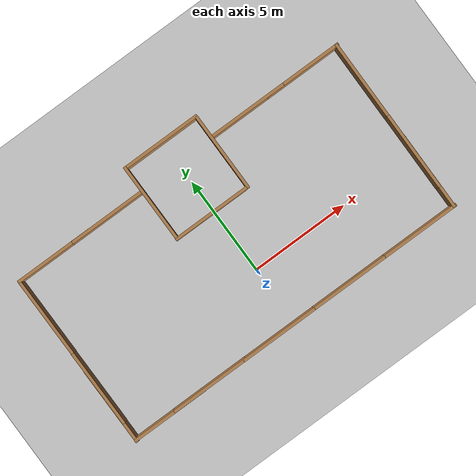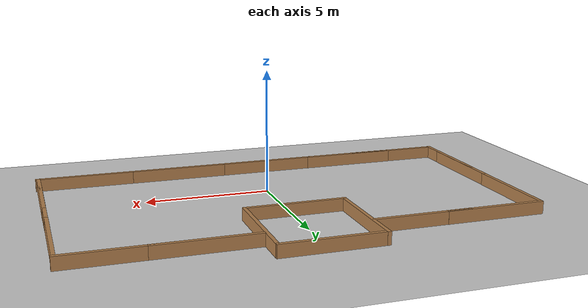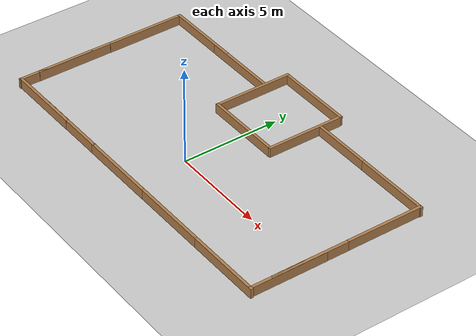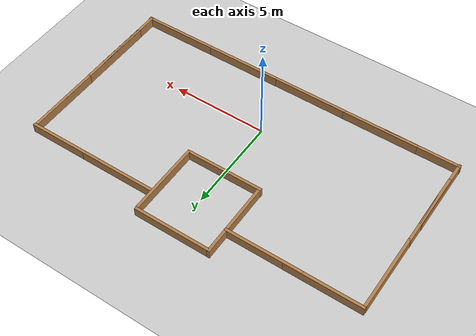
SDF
<sdf version="1.6">
 <world name="default">
  <light name="sun" type="directional">
   <pose>0 0 10 0 -0 0</pose>
   <diffuse>0.8 0.8 0.8 1</diffuse>
   <specular>0.2 0.2 0.2 1</specular>
   <attenuation>
    <range>1000</range>
    <constant>0.9</constant>
    <linear>0.01</linear>
    <quadratic>0.001</quadratic>
   </attenuation>
   <direction>-0.5 0.1 -0.9</direction>
  </light>
  <physics name="default_physics" default="0" type="ode">
   <real_time_update_rate>1000</real_time_update_rate>
   <max_step_size>0.001</max_step_size>
   <real_time_factor>1</real_time_factor>
   <ode>
    <solver>
     <type>quick</type>
     <iters>150</iters>
     <precon_iters>0</precon_iters>
     <sor>1.4</sor>
     <use_dynamic_moi_rescaling>1</use_dynamic_moi_rescaling>
    </solver>
    <constraints>
     <cfm>1e-05</cfm>
     <erp>0.2</erp>
     <contact_max_correcting_vel>2000</contact_max_correcting_vel>
     <contact_surface_layer>0.01</contact_surface_layer>
    </constraints>
   </ode>
  </physics>
  <scene><ambient>0.4 0.4 0.4 1</ambient><background>0.7 0.7 0.7 1</background><shadows>1</shadows></scene>
  <gravity>0 0 -9.8</gravity>
  <magnetic_field>6e-06 2.3e-05 -4.2e-05</magnetic_field>
  <atmosphere type="adiabatic"/>
  <audio><device>default</device></audio>
  <spherical_coordinates>
   <surface_model>EARTH_WGS84</surface_model>
   <latitude_deg>0</latitude_deg>
   <longitude_deg>0</longitude_deg>
   <elevation>0</elevation>
   <heading_deg>0</heading_deg>
  </spherical_coordinates>
  <model name="turtlebot3_square">
   <pose>-0.133172 5.32272 0 0 -0 1.57223</pose>
   <link name="Wall_0">
    <collision name="Wall_0_Collision">
     <geometry><box><size>4 0.15 0.5</size></box></geometry>
     <pose>0 0 0.25 0 -0 0</pose>
    </collision>
    <visual name="Wall_0_Visual">
     <pose>0 0 0.25 0 -0 0</pose>
     <geometry><box><size>4 0.15 0.5</size></box></geometry>
     <material>
      <script><uri>file://media/materials/scripts/gazebo.material</uri><name>Gazebo/Wood</name></script>
      <ambient>1 1 1 1</ambient>
     </material>
    </visual>
    <pose>0 1.925 0 0 -0 0</pose>
   </link>
   <static>1</static>
  </model>
  <model name="turtlebot3_square_clone">
   <pose>-7.03636 3.89737 0 0 -0 1.57456</pose>
   <link name="Wall_0">
    <collision name="Wall_0_Collision">
     <geometry><box><size>4 0.15 0.5</size></box></geometry>
     <pose>0 0 0.25 0 -0 0</pose>
    </collision>
    <visual name="Wall_0_Visual">
     <pose>0 0 0.25 0 -0 0</pose>
     <geometry><box><size>4 0.15 0.5</size></box></geometry>
     <material>
      <script><uri>file://media/materials/scripts/gazebo.material</uri><name>Gazebo/Wood</name></script>
      <ambient>1 1 1 1</ambient>
     </material>
    </visual>
    <pose>0 1.925 0 0 -0 0</pose>
   </link>
   <static>1</static>
  </model>
  <model name="turtlebot3_square_clone_0">
   <pose>-3.99799 4.02216 0 0 -0 0</pose>
   <link name="Wall_0">
    <collision name="Wall_0_Collision">
     <geometry><box><size>4 0.15 0.5</size></box></geometry>
     <pose>0 0 0.25 0 -0 0</pose>
    </collision>
    <visual name="Wall_0_Visual">
     <pose>0 0 0.25 0 -0 0</pose>
     <geometry><box><size>4 0.15 0.5</size></box></geometry>
     <material>
      <script><uri>file://media/materials/scripts/gazebo.material</uri><name>Gazebo/Wood</name></script>
      <ambient>1 1 1 1</ambient>
     </material>
    </visual>
    <pose>0 1.925 0 0 -0 0</pose>
   </link>
   <static>1</static>
  </model>
  <model name="turtlebot3_square_clone_1">
   <pose>-0.141512 1.35633 0 0 -0 0</pose>
   <link name="Wall_0">
    <collision name="Wall_0_Collision">
     <geometry><box><size>4 0.15 0.5</size></box></geometry>
     <pose>0 0 0.25 0 -0 0</pose>
    </collision>
    <visual name="Wall_0_Visual">
     <pose>0 0 0.25 0 -0 0</pose>
     <geometry><box><size>4 0.15 0.5</size></box></geometry>
     <material>
      <script><uri>file://media/materials/scripts/gazebo.material</uri><name>Gazebo/Wood</name></script>
      <ambient>1 1 1 1</ambient>
     </material>
    </visual>
    <pose>0 1.925 0 0 -0 0</pose>
   </link>
   <static>1</static>
  </model>
  <model name="turtlebot3_square_clone_2">
   <pose>3.83567 5.21728 0 0 -0 1.56957</pose>
   <link name="Wall_0">
    <collision name="Wall_0_Collision">
     <geometry><box><size>4 0.15 0.5</size></box></geometry>
     <pose>0 0 0.25 0 -0 0</pose>
    </collision>
    <visual name="Wall_0_Visual">
     <pose>0 0 0.25 0 -0 0</pose>
     <geometry><box><size>4 0.15 0.5</size></box></geometry>
     <material>
      <script><uri>file://media/materials/scripts/gazebo.material</uri><name>Gazebo/Wood</name></script>
      <ambient>1 1 1 1</ambient>
     </material>
    </visual>
    <pose>0 1.925 0 0 -0 0</pose>
   </link>
   <static>1</static>
  </model>
  <model name="turtlebot3_square_clone_3">
   <pose>10.8601 4.10334 0 0 -0 1.56595</pose>
   <link name="Wall_0">
    <collision name="Wall_0_Collision">
     <geometry><box><size>4 0.15 0.5</size></box></geometry>
     <pose>0 0 0.25 0 -0 0</pose>
    </collision>
    <visual name="Wall_0_Visual">
     <pose>0 0 0.25 0 -0 0</pose>
     <geometry><box><size>4 0.15 0.5</size></box></geometry>
     <material>
      <script><uri>file://media/materials/scripts/gazebo.material</uri><name>Gazebo/Wood</name></script>
      <ambient>1 1 1 1</ambient>
     </material>
    </visual>
    <pose>0 1.925 0 0 -0 0</pose>
   </link>
   <static>1</static>
  </model>
  <model name="turtlebot3_square_clone_4">
   <pose>-0.908724 -4.8909 0 0 -0 0</pose>
   <link name="Wall_0">
    <collision name="Wall_0_Collision">
     <geometry><box><size>4 0.15 0.5</size></box></geometry>
     <pose>0 0 0.25 0 -0 0</pose>
    </collision>
    <visual name="Wall_0_Visual">
     <pose>0 0 0.25 0 -0 0</pose>
     <geometry><box><size>4 0.15 0.5</size></box></geometry>
     <material>
      <script><uri>file://media/materials/scripts/gazebo.material</uri><name>Gazebo/Wood</name></script>
      <ambient>1 1 1 1</ambient>
     </material>
    </visual>
    <pose>0 1.925 0 0 -0 0</pose>
   </link>
   <static>1</static>
  </model>
  <model name="turtlebot3_square_clone_5">
   <pose>3.04309 -4.88773 0 0 -0 0</pose>
   <link name="Wall_0">
    <collision name="Wall_0_Collision">
     <geometry><box><size>4 0.15 0.5</size></box></geometry>
     <pose>0 0 0.25 0 -0 0</pose>
    </collision>
    <visual name="Wall_0_Visual">
     <pose>0 0 0.25 0 -0 0</pose>
     <geometry><box><size>4 0.15 0.5</size></box></geometry>
     <material>
      <script><uri>file://media/materials/scripts/gazebo.material</uri><name>Gazebo/Wood</name></script>
      <ambient>1 1 1 1</ambient>
     </material>
    </visual>
    <pose>0 1.925 0 0 -0 0</pose>
   </link>
   <static>1</static>
  </model>
  <model name="fnr2015_map">
   <static>1</static>
   <link name="link">
    <collision name="collision">
     <geometry><plane><normal>0 0 1</normal><size>29.9 22</size></plane></geometry>
     <surface><friction><ode><mu>100</mu><mu2>50</mu2></ode></friction></surface>
    </collision>
    <visual name="visual">
     <cast_shadows>0</cast_shadows>
     <geometry><plane><normal>0 0 1</normal><size>29.9 22</size></plane></geometry>
     <material>
      <script>
       <uri>model://FNR2015_map/materials/scripts</uri>
       <uri>model://FNR2015_map/materials/textures</uri>
       <name>FNR2015/Image</name>
      </script>
     </material>
    </visual>
   </link>
   <pose>-0.033622 1.43805 0 0 -0 0</pose>
  </model>
  <model name="turtlebot3_square_clone_5_clone">
   <pose>3.96858 4.13887 0 0 -0 0</pose>
   <link name="Wall_0">
    <collision name="Wall_0_Collision">
     <geometry><box><size>4 0.15 0.5</size></box></geometry>
     <pose>0 0 0.25 0 -0 0</pose>
    </collision>
    <visual name="Wall_0_Visual">
     <pose>0 0 0.25 0 -0 0</pose>
     <geometry><box><size>4 0.15 0.5</size></box></geometry>
     <material>
      <script><uri>file://media/materials/scripts/gazebo.material</uri><name>Gazebo/Wood</name></script>
      <ambient>1 1 1 1</ambient>
     </material>
    </visual>
    <pose>0 1.925 0 0 -0 0</pose>
   </link>
   <static>1</static>
  </model>
  <model name="turtlebot3_square_clone_5_clone_clone">
   <pose>7.04908 4.13656 0 0 -0 0</pose>
   <link name="Wall_0">
    <collision name="Wall_0_Collision">
     <geometry><box><size>4 0.15 0.5</size></box></geometry>
     <pose>0 0 0.25 0 -0 0</pose>
    </collision>
    <visual name="Wall_0_Visual">
     <pose>0 0 0.25 0 -0 0</pose>
     <geometry><box><size>4 0.15 0.5</size></box></geometry>
     <material>
      <script><uri>file://media/materials/scripts/gazebo.material</uri><name>Gazebo/Wood</name></script>
      <ambient>1 1 1 1</ambient>
     </material>
    </visual>
    <pose>0 1.925 0 0 -0 0</pose>
   </link>
   <static>1</static>
  </model>
  <model name="turtlebot3_square_clone_3_clone">
   <pose>10.8478 0.108384 0 0 -0 1.56595</pose>
   <link name="Wall_0">
    <collision name="Wall_0_Collision">
     <geometry><box><size>4 0.15 0.5</size></box></geometry>
     <pose>0 0 0.25 0 -0 0</pose>
    </collision>
    <visual name="Wall_0_Visual">
     <pose>0 0 0.25 0 -0 0</pose>
     <geometry><box><size>4 0.15 0.5</size></box></geometry>
     <material>
      <script><uri>file://media/materials/scripts/gazebo.material</uri><name>Gazebo/Wood</name></script>
      <ambient>1 1 1 1</ambient>
     </material>
    </visual>
    <pose>0 1.925 0 0 -0 0</pose>
   </link>
   <static>1</static>
  </model>
  <model name="turtlebot3_square_clone_3_clone_clone">
   <pose>10.8496 -1.02799 0 0 -0 1.56595</pose>
   <link name="Wall_0">
    <collision name="Wall_0_Collision">
     <geometry><box><size>4 0.15 0.5</size></box></geometry>
     <pose>0 0 0.25 0 -0 0</pose>
    </collision>
    <visual name="Wall_0_Visual">
     <pose>0 0 0.25 0 -0 0</pose>
     <geometry><box><size>4 0.15 0.5</size></box></geometry>
     <material>
      <script><uri>file://media/materials/scripts/gazebo.material</uri><name>Gazebo/Wood</name></script>
      <ambient>1 1 1 1</ambient>
     </material>
    </visual>
    <pose>0 1.925 0 0 -0 0</pose>
   </link>
   <static>1</static>
  </model>
  <model name="turtlebot3_square_clone_5_clone_0">
   <pose>7.03427 -4.88867 0 0 -0 0</pose>
   <link name="Wall_0">
    <collision name="Wall_0_Collision">
     <geometry><box><size>4 0.15 0.5</size></box></geometry>
     <pose>0 0 0.25 0 -0 0</pose>
    </collision>
    <visual name="Wall_0_Visual">
     <pose>0 0 0.25 0 -0 0</pose>
     <geometry><box><size>4 0.15 0.5</size></box></geometry>
     <material>
      <script><uri>file://media/materials/scripts/gazebo.material</uri><name>Gazebo/Wood</name></script>
      <ambient>1 1 1 1</ambient>
     </material>
    </visual>
    <pose>0 1.925 0 0 -0 0</pose>
   </link>
   <static>1</static>
  </model>
  <model name="turtlebot3_square_clone_0_clone">
   <pose>-7.03645 4.02741 0 0 -0 0</pose>
   <link name="Wall_0">
    <collision name="Wall_0_Collision">
     <geometry><box><size>4 0.15 0.5</size></box></geometry>
     <pose>0 0 0.25 0 -0 0</pose>
    </collision>
    <visual name="Wall_0_Visual">
     <pose>0 0 0.25 0 -0 0</pose>
     <geometry><box><size>4 0.15 0.5</size></box></geometry>
     <material>
      <script><uri>file://media/materials/scripts/gazebo.material</uri><name>Gazebo/Wood</name></script>
      <ambient>1 1 1 1</ambient>
     </material>
    </visual>
    <pose>0 1.925 0 0 -0 0</pose>
   </link>
   <static>1</static>
  </model>
  <model name="turtlebot3_square_clone_clone">
   <pose>-7.03092 -0.031057 0 0 -0 1.57456</pose>
   <link name="Wall_0">
    <collision name="Wall_0_Collision">
     <geometry><box><size>4 0.15 0.5</size></box></geometry>
     <pose>0 0 0.25 0 -0 0</pose>
    </collision>
    <visual name="Wall_0_Visual">
     <pose>0 0 0.25 0 -0 0</pose>
     <geometry><box><size>4 0.15 0.5</size></box></geometry>
     <material>
      <script><uri>file://media/materials/scripts/gazebo.material</uri><name>Gazebo/Wood</name></script>
      <ambient>1 1 1 1</ambient>
     </material>
    </visual>
    <pose>0 1.925 0 0 -0 0</pose>
   </link>
   <static>1</static>
  </model>
  <model name="turtlebot3_square_clone_4_clone">
   <pose>-4.81406 -4.88662 0 0 -0 0</pose>
   <link name="Wall_0">
    <collision name="Wall_0_Collision">
     <geometry><box><size>4 0.15 0.5</size></box></geometry>
     <pose>0 0 0.25 0 -0 0</pose>
    </collision>
    <visual name="Wall_0_Visual">
     <pose>0 0 0.25 0 -0 0</pose>
     <geometry><box><size>4 0.15 0.5</size></box></geometry>
     <material>
      <script><uri>file://media/materials/scripts/gazebo.material</uri><name>Gazebo/Wood</name></script>
      <ambient>1 1 1 1</ambient>
     </material>
    </visual>
    <pose>0 1.925 0 0 -0 0</pose>
   </link>
   <static>1</static>
  </model>
  <model name="turtlebot3_square_clone_4_clone_0">
   <pose>-7.04339 -4.89537 0 0 -0 0</pose>
   <link name="Wall_0">
    <collision name="Wall_0_Collision">
     <geometry><box><size>4 0.15 0.5</size></box></geometry>
     <pose>0 0 0.25 0 -0 0</pose>
    </collision>
    <visual name="Wall_0_Visual">
     <pose>0 0 0.25 0 -0 0</pose>
     <geometry><box><size>4 0.15 0.5</size></box></geometry>
     <material>
      <script><uri>file://media/materials/scripts/gazebo.material</uri><name>Gazebo/Wood</name></script>
      <ambient>1 1 1 1</ambient>
     </material>
    </visual>
    <pose>0 1.925 0 0 -0 0</pose>
   </link>
   <static>1</static>
  </model>
  <model name="turtlebot3_square_clone_clone_clone">
   <pose>-7.04027 -1.07259 0 0 -0 1.57456</pose>
   <link name="Wall_0">
    <collision name="Wall_0_Collision">
     <geometry><box><size>4 0.15 0.5</size></box></geometry>
     <pose>0 0 0.25 0 -0 0</pose>
    </collision>
    <visual name="Wall_0_Visual">
     <pose>0 0 0.25 0 -0 0</pose>
     <geometry><box><size>4 0.15 0.5</size></box></geometry>
     <material>
      <script><uri>file://media/materials/scripts/gazebo.material</uri><name>Gazebo/Wood</name></script>
      <ambient>1 1 1 1</ambient>
     </material>
    </visual>
    <pose>0 1.925 0 0 -0 0</pose>
   </link>
   <static>1</static>
  </model>
  <model name="turtlebot3_square_clone_1_clone">
   <pose>-0.03017 5.3179 0 0 -0 0</pose>
   <link name="Wall_0">
    <collision name="Wall_0_Collision">
     <geometry><box><size>4 0.15 0.5</size></box></geometry>
     <pose>0 0 0.25 0 -0 0</pose>
    </collision>
    <visual name="Wall_0_Visual">
     <pose>0 0 0.25 0 -0 0</pose>
     <geometry><box><size>4 0.15 0.5</size></box></geometry>
     <material>
      <script><uri>file://media/materials/scripts/gazebo.material</uri><name>Gazebo/Wood</name></script>
      <ambient>1 1 1 1</ambient>
     </material>
    </visual>
    <pose>0 1.925 0 0 -0 0</pose>
   </link>
   <static>1</static>
  </model>
 </world>
</sdf>
